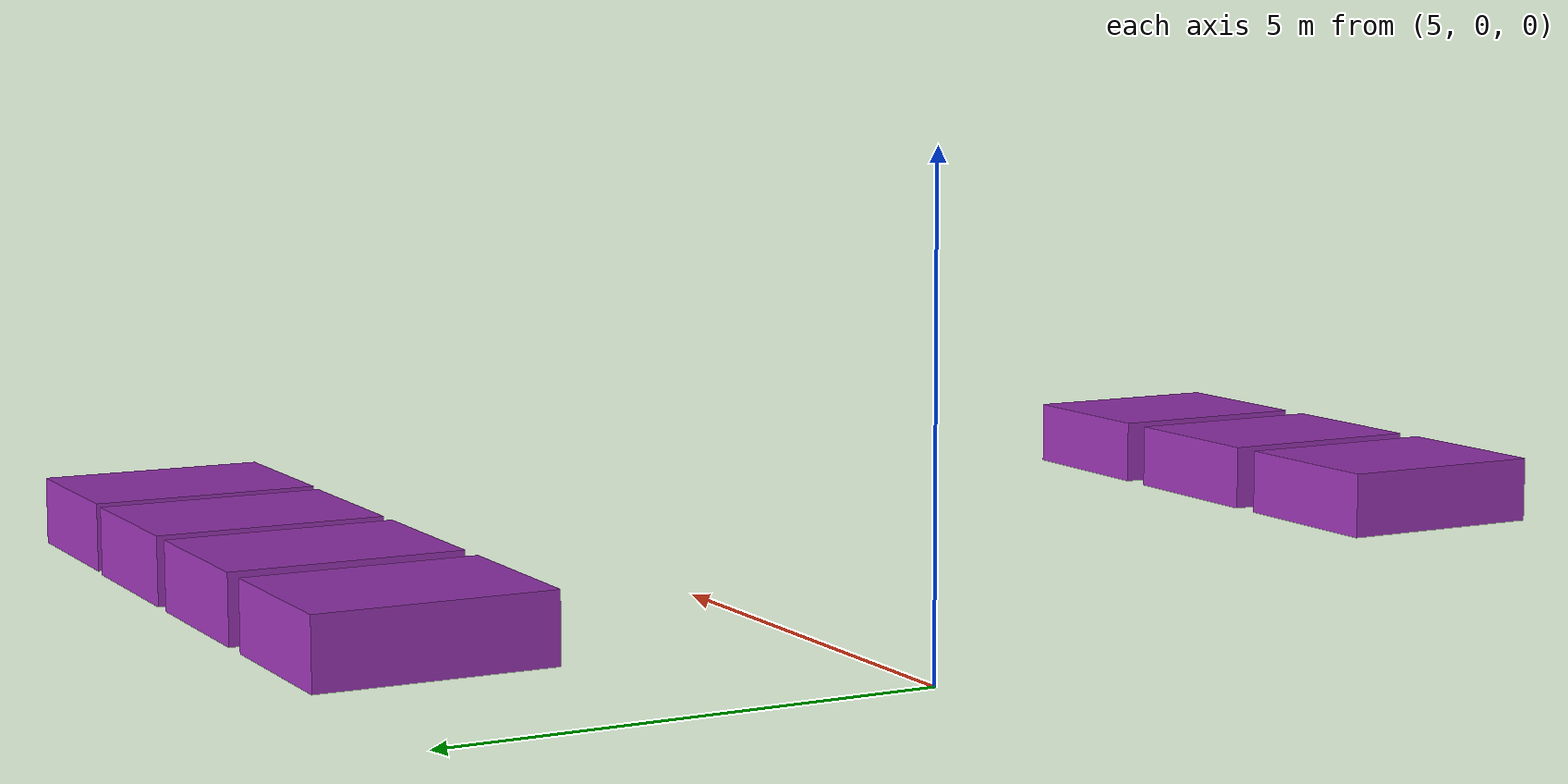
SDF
<?xml version="1.0" encoding="UTF-8"?>
<sdf version="1.4">
  <model name="baggage_group_E">
      <model name='baggage_E'>
        <include>
          <uri>model://baggage_E</uri>
          <pose>8.47333 3.91062 0.375 0 -0 0</pose>
        </include>
      </model>
      <model name='baggage_E_0'>
        <include>
          <uri>model://baggage_E</uri>
          <pose>10.8032 3.91351 0.375 0 -0 0</pose>
        </include>
      </model>
      <model name='baggage_E_1'>
        <include>
          <uri>model://baggage_E</uri>
          <pose>13.0632 3.91267 0.375 0 -0 0</pose>
        </include>
      </model>
      <model name='baggage_E_2'>
        <include>
          <uri>model://baggage_E</uri>
          <pose>15.2965 3.88657 0.375 0 -0 0</pose>
        </include>
      </model>
      <model name='baggage_E_3'>
        <include>
          <uri>model://baggage_E</uri>
          <pose>10.3471 -9.53158 0.375 0 -0 0</pose>
        </include>
      </model>
      <model name='baggage_E_4'>
        <include>
          <uri>model://baggage_E</uri>
          <pose>12.6706 -9.51887 0.375 0 -0 0</pose>
        </include>
      </model>
      <model name='baggage_E_5'>
        <include>
          <uri>model://baggage_E</uri>
          <pose>15.0237 -9.51022 0.375 0 -0 0</pose>
        </include>
      </model>
  </model>
</sdf>

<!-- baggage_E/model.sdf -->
<sdf version='1.4'>
  <model name="baggage_E">
      <static>true</static>
      <link name="link">
         <collision name="collision">
            <geometry>
               <box>
                  <size>2 2.5 0.75</size>
               </box>
            </geometry>
         </collision>
         <visual name="visual">
            <cast_shadows>false</cast_shadows>
            <geometry>
               <box>
                  <size>2 2.5 0.75</size>
               </box>
            </geometry>
            <material>
               <script>
                  <uri>file://media/materials/scripts/gazebo.material</uri>
                  <name>Gazebo/Purple</name>
               </script>
            </material>
         </visual>
      </link>
  </model>
</sdf>
